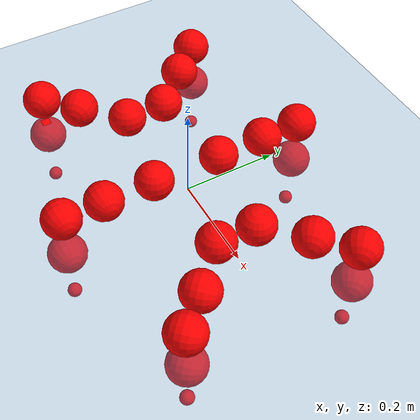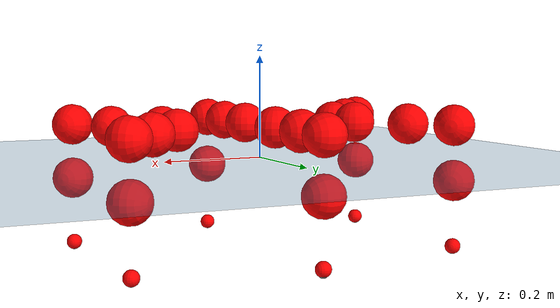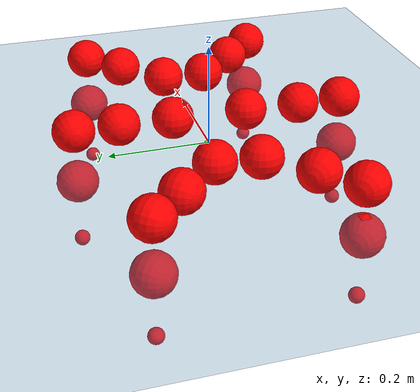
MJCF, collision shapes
<mujoco model="Golem">
  <compiler angle="radian" assetdir="assets" balanceinertia="true" inertiafromgeom="false"/>

  <option timestep="0.005" density="1.2" viscosity="2e-05"/>

  <size nkey="1"/>

  <visual>
    <quality shadowsize="8192"/>
    <map shadowclip="0.5"/>
  </visual>

  <default>
    <default class="/">
      <joint armature="0.01" damping="0.01" frictionloss="0.01"/>
      <geom contype="0" conaffinity="0" group="1" solref="-1000 -80"/>
      <site size="0.01 0.005 0.005" group="5"/>
      <general forcelimited="true" biastype="affine" gainprm="25" biasprm="0 -25 -0.5"/>
      <default class="visual">
        <geom type="mesh" group="2"/>
      </default>
      <default class="collision">
        <geom group="3"/>
      </default>
      <default class="foot">
        <geom size="0.01 0 0" condim="6" group="4" priority="1" solimp="0.015 1 0.01"/>
      </default>
      <default class="reward_collision_sphere">
        <geom group="5" rgba="1 0 0 1"/>
      </default>
    </default>
  </default>

  <asset>
    <texture type="skybox" colorspace="auto" name="//unnamed_texture_0" builtin="gradient" rgb1="0.95 0.95 0.95" rgb2="0.95 0.95 0.95" width="100" height="600"/>
    <texture type="2d" colorspace="auto" name="texplane" builtin="checker" rgb1="0.345 0.575 0.748" rgb2="0.345 0.575 0.748" markrgb="1 1 1" width="512" height="512"/>
    <material name="MatPlane" class="/" texture="texplane" texuniform="true" texrepeat="2 2" specular="0.9"/>
    <mesh name="body" class="/" file="body.stl" scale="0.001 0.001 0.001"/>
    <mesh name="coxa" class="/" file="coxa.stl" scale="0.001 0.001 0.001"/>
    <mesh name="femur" class="/" file="femur.stl" scale="0.001 0.001 0.001"/>
    <mesh name="tibia" class="/" file="tibia.stl" scale="0.001 0.001 0.001"/>
    <mesh name="tarsus" class="/" file="tarsus.stl" scale="0.001 0.001 0.001"/>
  </asset>

  <worldbody>
    <geom name="floor" class="/" size="100 100 0.125" type="plane" group="0" material="MatPlane"/>
    <light name="toplight_shadow" class="/" pos="0 0 5" dir="0.0990148 0.0990148 -0.990148" type="directional" ambient="0.04 0.04 0.04" diffuse="0.55 0.55 0.55" specular="0.12 0.12 0.12"/>
    <light name="toplight_fill" class="/" pos="0 0 5" dir="0.0990148 0.0990148 -0.990148" type="directional" castshadow="false" ambient="0.04 0.04 0.04" diffuse="0.3 0.3 0.3" specular="0.08 0.08 0.08"/>
    <body name="trunk" pos="-0.000127381 4.36604e-05 0.000700609" quat="1 2.18219e-05 -2.1856e-06 -4.41522e-05">
      <inertial pos="-3.51607e-05 0.000733214 -0.00478093" quat="0.99996 0.0056508 0.00525336 -0.00450675" mass="3.86408" diaginertia="0.0263555 0.00374107 0.0102675"/>
      <joint name="//unnamed_joint_0" type="free"/>
      <geom name="//unnamed_geom_1" class="/" pos="0 0 0.0642758" quat="1 0 0 0" type="mesh" rgba="0.9 0.9 0.9 1" mesh="body"/>
      <site name="imu" class="/" pos="0.1529 0.00486125 0.104579" size="0.0101202"/>
      <camera name="track" class="/" pos="0 -1.6437 0" quat="0.707107 0.707107 0 0" mode="trackcom"/>
      <camera name="ego_camera" class="/" pos="0.157287 0 0.100431" quat="-0.5 -0.5 0.5 0.5"/>
      <body name="coxa_RR" pos="-0.214783 -0.0674332 0.0631942" quat="0.382667 1.68939e-05 -3.69011e-06 -0.923886">
        <inertial pos="0.00065479 6.11017e-05 0.00117659" quat="1 -0.000355009 0.000450546 0.000300011" mass="0.205627" diaginertia="0.0261601 0.00372186 0.0101252"/>
        <joint name="coxa_joint_RR" class="/" pos="0 0 0" axis="-0.00446203 -9.59489e-05 -0.99999" range="-3.12026 3.17373" armature="0.0105211" damping="0.00905526" frictionloss="0.010363"/>
        <geom name="//unnamed_geom_2" class="/" type="mesh" rgba="0.2 0.2 0.2 1" mesh="coxa"/>
        <geom name="//unnamed_geom_3" class="reward_collision_sphere" size="0.0404808" pos="-0.0362969 0 0"/>
        <body name="femur_RR" pos="0.0715133 0.0023301 0.00122247" quat="0.499944 -0.500089 0.500051 0.499917">
          <inertial pos="0.00106499 0.00164156 0.00214028" quat="0.999999 -0.000476409 -9.834e-05 0.000993632" mass="0.20741" diaginertia="0.0260714 0.00370187 0.0104296"/>
          <joint name="femur_joint_RR" class="/" pos="0 0 0" axis="-0.00226388 0.00288182 -0.999993" range="-3.14069 3.1408" armature="0.00964313" damping="0.00395886" frictionloss="0.0112256"/>
          <geom name="//unnamed_geom_4" class="/" type="mesh" rgba="0.9 0.9 0.9 1" mesh="femur"/>
          <geom name="//unnamed_geom_5" class="reward_collision_sphere" size="0.0404808"/>
          <body name="tibia_RR" pos="0.000112709 -0.0872759 -0.00195763" quat="-0.000300523 1 -3.0342e-05 0.000129934">
            <inertial pos="-0.000524321 -0.0020239 0.000360879" quat="0.999996 0.00265465 0.000342632 -0.000334001" mass="0.205445" diaginertia="0.026128 0.00374584 0.0102373"/>
            <joint name="tibia_joint_RR" class="/" pos="0 0 0" axis="-0.000247457 0.000335312 1" range="-3.13934 3.14093" armature="0.0104169" damping="0.0131616" frictionloss="0.0102069"/>
            <geom name="//unnamed_geom_6" class="/" type="mesh" rgba="0.2 0.2 0.2 1" mesh="tibia"/>
            <geom name="//unnamed_geom_7" class="reward_collision_sphere" size="0.0404808"/>
            <body name="tarsus_RR" pos="0.104301 0.000617352 -7.53821e-05" quat="1 0.000206201 0.000119197 -0.000191996">
              <inertial pos="0.0733994 0.000864997 -0.000361656" quat="0.501835 0.4982 0.500433 0.499525" mass="0.209616" diaginertia="0.0265829 0.00380007 0.0102715"/>
              <joint name="tarsus_joint_RR" class="/" pos="0 0 0" axis="-0.00277121 0.00279137 0.999992" range="-3.18173 3.18291" armature="0.0103426" damping="0" frictionloss="0.0100307"/>
              <geom name="//unnamed_geom_8" class="/" type="mesh" rgba="0.9 0.9 0.9 1" mesh="tarsus"/>
              <geom name="foot_1" class="foot" size="0.0101372" pos="0.135509 0 0" quat="0 -0.707107 0 0.707107"/>
              <geom name="//unnamed_geom_10" class="reward_collision_sphere" size="0.0404808"/>
              <geom name="//unnamed_geom_11" class="reward_collision_sphere" size="0.0151803" pos="0.130064 0 0"/>
              <site name="foot_1" class="foot" pos="0.135509 0 0" quat="0 -0.707107 0 0.707107" size="0.0101202"/>
            </body>
          </body>
        </body>
      </body>
      <body name="coxa_RM" pos="-0.00193292 -0.110282 0.0632945" quat="0.70703 0.000244211 -0.000382539 -0.707184">
        <inertial pos="0.000641195 0.00049832 0.000581362" quat="0.999949 0.00215156 0.00592626 -0.00787542" mass="0.210557" diaginertia="0.0260165 0.00375036 0.0103741"/>
        <joint name="coxa_joint_RM" class="/" pos="0 0 0" axis="-7.62661e-05 -0.00479855 -0.999988" range="-3.13464 3.14073" armature="0.0101292" damping="0.0107805" frictionloss="0.00990009"/>
        <geom name="//unnamed_geom_12" class="/" type="mesh" rgba="0.2 0.2 0.2 1" mesh="coxa"/>
        <geom name="//unnamed_geom_13" class="reward_collision_sphere" size="0.0404808" pos="-0.0362969 0 0"/>
        <body name="femur_RM" pos="0.0720335 -0.000447696 -0.00142525" quat="0.500055 -0.500078 0.499368 0.500499">
          <inertial pos="-0.00186591 0.000385109 -0.00218537" quat="0.999997 0.00188656 0.00166443 -0.000535521" mass="0.210251" diaginertia="0.0257632 0.00374103 0.0100982"/>
          <joint name="femur_joint_RM" class="/" pos="0 0 0" axis="-0.00248125 0.000126201 -0.999997" range="-3.15201 3.17346" armature="0.00954301" damping="0.00660123" frictionloss="0.00936698"/>
          <geom name="//unnamed_geom_14" class="/" type="mesh" rgba="0.9 0.9 0.9 1" mesh="femur"/>
          <geom name="//unnamed_geom_15" class="reward_collision_sphere" size="0.0404808"/>
          <body name="tibia_RM" pos="-0.000312819 -0.0888441 0.00182384" quat="-0.000111373 1 -2.73092e-05 -0.000359613">
            <inertial pos="0.000533572 -0.000847724 -0.000482674" quat="1 -3.30224e-05 -0.000148883 6.09802e-05" mass="0.20593" diaginertia="0.0256517 0.00368155 0.0101427"/>
            <joint name="tibia_joint_RM" class="/" pos="0 0 0" axis="0.00257007 0.00753747 0.999968" range="-3.15991 3.11253" armature="0.0100629" damping="0" frictionloss="0.00965609"/>
            <geom name="//unnamed_geom_16" class="/" type="mesh" rgba="0.2 0.2 0.2 1" mesh="tibia"/>
            <geom name="//unnamed_geom_17" class="reward_collision_sphere" size="0.0404808"/>
            <body name="tarsus_RM" pos="0.104573 0.00149889 -0.00135127" quat="1 7.80437e-05 9.16831e-06 9.5827e-05">
              <inertial pos="0.0735363 -2.64005e-05 0.000385507" quat="0.502133 0.499962 0.49995 0.497946" mass="0.204427" diaginertia="0.0255463 0.00369918 0.00982922"/>
              <joint name="tarsus_joint_RM" class="/" pos="0 0 0" axis="0.00206135 0.00344654 0.999992" range="-3.16691 3.09966" armature="0.0101234" damping="0.00160701" frictionloss="0.0104285"/>
              <geom name="//unnamed_geom_18" class="/" type="mesh" rgba="0.9 0.9 0.9 1" mesh="tarsus"/>
              <geom name="foot_2" class="foot" size="0.0098065" pos="0.135509 0 0" quat="0 -0.707107 0 0.707107"/>
              <geom name="//unnamed_geom_20" class="reward_collision_sphere" size="0.0404808"/>
              <geom name="//unnamed_geom_21" class="reward_collision_sphere" size="0.0151803" pos="0.130064 0 0"/>
              <site name="foot_2" class="foot" pos="0.135509 0 0" quat="0 -0.707107 0 0.707107" size="0.0101202"/>
            </body>
          </body>
        </body>
      </body>
      <body name="coxa_RF" pos="0.213814 -0.0689586 0.0630203" quat="0.923856 0.000388387 4.54023e-05 -0.38274">
        <inertial pos="-0.000917526 -0.00233634 0.000144438" quat="0.999991 -0.00298757 -0.00173886 -0.00235677" mass="0.208028" diaginertia="0.0260906 0.00372131 0.0101285"/>
        <joint name="coxa_joint_RF" class="/" pos="0 0 0" axis="-0.000638857 0.000467914 -1" range="-3.13729 3.14241" armature="0.00984217" damping="0" frictionloss="0.0102209"/>
        <geom name="//unnamed_geom_22" class="/" type="mesh" rgba="0.2 0.2 0.2 1" mesh="coxa"/>
        <geom name="//unnamed_geom_23" class="reward_collision_sphere" size="0.0404808" pos="-0.0362969 0 0"/>
        <body name="femur_RF" pos="0.0733004 0.000501688 -0.00171218" quat="0.499868 -0.500092 0.500088 0.499951">
          <inertial pos="0.000472345 -6.88029e-05 0.000963238" quat="0.999993 0.00123273 -0.00258728 -0.0024518" mass="0.204427" diaginertia="0.0260191 0.00362144 0.0101276"/>
          <joint name="femur_joint_RF" class="/" pos="0 0 0" axis="0.0012875 -0.00125858 -0.999998" range="-3.10486 3.13062" armature="0.0102368" damping="0.00562012" frictionloss="0.0098723"/>
          <geom name="//unnamed_geom_24" class="/" type="mesh" rgba="0.9 0.9 0.9 1" mesh="femur"/>
          <geom name="//unnamed_geom_25" class="reward_collision_sphere" size="0.0404808"/>
          <body name="tibia_RF" pos="-0.0014939 -0.0886382 -0.00126957" quat="2.24422e-06 1 5.03515e-05 -3.80312e-05">
            <inertial pos="0.000381032 0.000897023 3.54368e-05" quat="0.999949 -0.00629226 -0.00466006 -0.00640067" mass="0.213394" diaginertia="0.025759 0.00377281 0.0102824"/>
            <joint name="tibia_joint_RF" class="/" pos="0 0 0" axis="0.000300384 -0.000925081 1" range="-3.13816 3.14055" armature="0.00998788" damping="0.00138257" frictionloss="0.00986144"/>
            <geom name="//unnamed_geom_26" class="/" type="mesh" rgba="0.2 0.2 0.2 1" mesh="tibia"/>
            <geom name="//unnamed_geom_27" class="reward_collision_sphere" size="0.0404808"/>
            <body name="tarsus_RF" pos="0.107354 -0.00020375 -0.00190539" quat="1 0.000162684 0.00015419 -9.18444e-05">
              <inertial pos="0.0716286 -0.00142823 -0.00103806" quat="0.499556 0.500506 0.496674 0.503243" mass="0.201889" diaginertia="0.0259399 0.00369845 0.0101095"/>
              <joint name="tarsus_joint_RF" class="/" pos="0 0 0" axis="0.00344474 0.00559695 0.999978" range="-3.15281 3.13743" armature="0.0101348" damping="0.0144461" frictionloss="0.0105508"/>
              <geom name="//unnamed_geom_28" class="/" type="mesh" rgba="0.9 0.9 0.9 1" mesh="tarsus"/>
              <geom name="foot_3" class="foot" size="0.010186" pos="0.135509 0 0" quat="0 -0.707107 0 0.707107"/>
              <geom name="//unnamed_geom_30" class="reward_collision_sphere" size="0.0404808"/>
              <geom name="//unnamed_geom_31" class="reward_collision_sphere" size="0.0151803" pos="0.130064 0 0"/>
              <site name="foot_3" class="foot" pos="0.135509 0 0" quat="0 -0.707107 0 0.707107" size="0.0101202"/>
            </body>
          </body>
        </body>
      </body>
      <body name="coxa_LR" pos="-0.214906 0.0706677 0.0666395" quat="0.382872 0.000562132 -2.97073e-05 0.923801">
        <inertial pos="0.00014447 -8.26892e-06 0.00204374" quat="0.999996 0.00246522 0.000156136 -0.00111757" mass="0.206662" diaginertia="0.0256742 0.00368142 0.00985553"/>
        <joint name="coxa_joint_LR" class="/" pos="0 0 0" axis="-0.000950974 7.12009e-06 -1" range="-3.12213 3.12137" armature="0.010587" damping="0" frictionloss="0.00918255"/>
        <geom name="//unnamed_geom_32" class="/" type="mesh" rgba="0.2 0.2 0.2 1" mesh="coxa"/>
        <geom name="//unnamed_geom_33" class="reward_collision_sphere" size="0.0404808" pos="-0.0362969 0 0"/>
        <body name="femur_LR" pos="0.0738177 -0.00235688 -0.000859442" quat="0.499851 -0.499707 0.500105 0.500337">
          <inertial pos="0.00129711 0.000724396 0.000268012" quat="0.999987 -0.00141611 -0.000820853 -0.00473748" mass="0.20226" diaginertia="0.0258943 0.00377416 0.0101955"/>
          <joint name="femur_joint_LR" class="/" pos="0 0 0" axis="-0.00378643 0.00547854 0.999978" range="-3.18297 3.10537" armature="0.00921378" damping="0.0045956" frictionloss="0.00995847"/>
          <geom name="//unnamed_geom_34" class="/" type="mesh" rgba="0.9 0.9 0.9 1" mesh="femur"/>
          <geom name="//unnamed_geom_35" class="reward_collision_sphere" size="0.0404808"/>
          <body name="tibia_LR" pos="0.000427516 -0.0909049 -0.00127737" quat="0.000126552 1 0.000303648 0.000117043">
            <inertial pos="-0.000937374 -0.0012462 -0.000390252" quat="0.999999 0.00104888 -6.77409e-05 0.00021341" mass="0.209728" diaginertia="0.0258129 0.00381036 0.0102554"/>
            <joint name="tibia_joint_LR" class="/" pos="0 0 0" axis="-0.000316854 -0.00965105 -0.999953" range="-3.13278 3.11572" armature="0.0106269" damping="0" frictionloss="0.00999739"/>
            <geom name="//unnamed_geom_36" class="/" type="mesh" rgba="0.2 0.2 0.2 1" mesh="tibia"/>
            <geom name="//unnamed_geom_37" class="reward_collision_sphere" size="0.0404808"/>
            <body name="tarsus_LR" pos="0.108187 0.0012366 0.000355423" quat="1 -0.000314647 4.31369e-05 0.000851071">
              <inertial pos="0.0719723 -0.000487299 0.00119109" quat="0.500093 0.499732 0.500233 0.499942" mass="0.206795" diaginertia="0.0257778 0.00365075 0.0100846"/>
              <joint name="tarsus_joint_LR" class="/" pos="0 0 0" axis="-0.00342671 0.000936287 -0.999994" range="-3.13901 3.14643" armature="0.00962475" damping="0.0281541" frictionloss="0.0108662"/>
              <geom name="//unnamed_geom_38" class="/" type="mesh" rgba="0.9 0.9 0.9 1" mesh="tarsus"/>
              <geom name="foot_4" class="foot" size="0.0102199" pos="0.135509 0 0" quat="0.707107 0 -0.707107 0"/>
              <geom name="//unnamed_geom_40" class="reward_collision_sphere" size="0.0404808"/>
              <geom name="//unnamed_geom_41" class="reward_collision_sphere" size="0.0151803" pos="0.130064 0 0"/>
              <site name="foot_4" class="foot" pos="0.135509 0 0" quat="0.707107 0 -0.707107 0" size="0.0101202"/>
            </body>
          </body>
        </body>
      </body>
      <body name="coxa_LM" pos="0.000404762 0.107637 0.0639918" quat="0.707072 4.93251e-05 -7.03173e-06 0.707141">
        <inertial pos="0.00174127 -4.50855e-05 -0.000348961" quat="0.999987 0.000788595 -0.00403457 0.00286353" mass="0.203715" diaginertia="0.0262138 0.00368581 0.0101281"/>
        <joint name="coxa_joint_LM" class="/" pos="0 0 0" axis="0.00100843 -0.00681879 -0.999976" range="-3.12884 3.1428" armature="0.00997872" damping="0" frictionloss="0.0102686"/>
        <geom name="//unnamed_geom_42" class="/" type="mesh" rgba="0.2 0.2 0.2 1" mesh="coxa"/>
        <geom name="//unnamed_geom_43" class="reward_collision_sphere" size="0.0404808" pos="-0.0362969 0 0"/>
        <body name="femur_LM" pos="0.0683649 0.00094336 0.000945633" quat="0.499968 -0.499982 0.500214 0.499836">
          <inertial pos="-0.000266522 0.000271152 0.000580047" quat="0.999989 -0.00146264 0.00308252 0.00317849" mass="0.210358" diaginertia="0.0252457 0.00373331 0.0104029"/>
          <joint name="femur_joint_LM" class="/" pos="0 0 0" axis="-0.0133282 0.000926911 0.999911" range="-3.10476 3.15667" armature="0.0105493" damping="0" frictionloss="0.0101516"/>
          <geom name="//unnamed_geom_44" class="/" type="mesh" rgba="0.9 0.9 0.9 1" mesh="femur"/>
          <geom name="//unnamed_geom_45" class="reward_collision_sphere" size="0.0404808"/>
          <body name="tibia_LM" pos="0.00049878 -0.086205 0.00135771" quat="-0.000212399 1 2.85703e-05 8.325e-05">
            <inertial pos="-0.00177419 -8.26385e-05 -2.63921e-05" quat="0.999989 0.00125259 -0.000312934 -0.00450195" mass="0.207991" diaginertia="0.0259909 0.00377315 0.0102123"/>
            <joint name="tibia_joint_LM" class="/" pos="0 0 0" axis="0.00202939 0.000195546 -0.999998" range="-3.15637 3.15711" armature="0.00998165" damping="0" frictionloss="0.00895507"/>
            <geom name="//unnamed_geom_46" class="/" type="mesh" rgba="0.2 0.2 0.2 1" mesh="tibia"/>
            <geom name="//unnamed_geom_47" class="reward_collision_sphere" size="0.0404808"/>
            <body name="tarsus_LM" pos="0.108288 -0.000791175 0.000536698" quat="1 0.000128064 0.00023071 -0.000470399">
              <inertial pos="0.0716995 -0.00016505 0.000201855" quat="0.499028 0.502538 0.502781 0.495619" mass="0.205562" diaginertia="0.025832 0.00374871 0.0102019"/>
              <joint name="tarsus_joint_LM" class="/" pos="0 0 0" axis="0.00433238 0.0035247 -0.999984" stiffness="0.0021729" range="-3.12784 3.13903" armature="0.00965893" damping="0.00401187" frictionloss="0.0103962"/>
              <geom name="//unnamed_geom_48" class="/" type="mesh" rgba="0.9 0.9 0.9 1" mesh="tarsus"/>
              <geom name="foot_5" class="foot" size="0.0111009" pos="0.135509 0 0" quat="0.707107 0 -0.707107 0"/>
              <geom name="//unnamed_geom_50" class="reward_collision_sphere" size="0.0404808"/>
              <geom name="//unnamed_geom_51" class="reward_collision_sphere" size="0.0151803" pos="0.130064 0 0"/>
              <site name="foot_5" class="foot" pos="0.135509 0 0" quat="0.707107 0 -0.707107 0" size="0.0101202"/>
            </body>
          </body>
        </body>
      </body>
      <body name="coxa_LF" pos="0.21502 0.0687779 0.0629942" quat="0.923866 -0.000337139 1.57666e-05 0.382717">
        <inertial pos="0.000172666 -0.00199129 0.000483936" quat="0.999973 0.00443624 0.00344292 0.00472258" mass="0.210928" diaginertia="0.0266485 0.00386996 0.0105142"/>
        <joint name="coxa_joint_LF" class="/" pos="0 0 0" axis="0.00445376 -0.00373422 -0.999983" range="-3.12989 3.1406" armature="0.00976699" damping="0.00197808" frictionloss="0.00958715"/>
        <geom name="//unnamed_geom_52" class="/" type="mesh" rgba="0.2 0.2 0.2 1" mesh="coxa"/>
        <geom name="//unnamed_geom_53" class="reward_collision_sphere" size="0.0404808" pos="-0.0362969 0 0"/>
        <body name="femur_LF" pos="0.0700299 0.000444154 0.00081894" quat="0.50003 -0.499972 0.500001 0.499997">
          <inertial pos="-0.000442846 -0.000227275 -0.00140148" quat="0.999996 -0.000611654 -0.00252763 0.000607634" mass="0.20634" diaginertia="0.0254759 0.00372037 0.0100872"/>
          <joint name="femur_joint_LF" class="/" pos="0 0 0" axis="0.000906342 -0.00208077 0.999997" range="-3.1336 3.13913" armature="0.0101648" damping="0.0011655" frictionloss="0.0100334"/>
          <geom name="//unnamed_geom_54" class="/" type="mesh" rgba="0.9 0.9 0.9 1" mesh="femur"/>
          <geom name="//unnamed_geom_55" class="reward_collision_sphere" size="0.0404808"/>
          <body name="tibia_LF" pos="7.97486e-05 -0.0888509 -7.66766e-05" quat="9.49087e-05 1 0.000152696 -2.73091e-05">
            <inertial pos="0.00176971 0.00196766 0.00219717" quat="0.999988 -0.00256653 -0.00280559 -0.00301962" mass="0.207148" diaginertia="0.0260291 0.00373754 0.01048"/>
            <joint name="tibia_joint_LF" class="/" pos="0 0 0" axis="-0.0077634 0.000398792 -0.99997" range="-3.1367 3.10341" armature="0.0102361" damping="0" frictionloss="0.0101748"/>
            <geom name="//unnamed_geom_56" class="/" type="mesh" rgba="0.2 0.2 0.2 1" mesh="tibia"/>
            <geom name="//unnamed_geom_57" class="reward_collision_sphere" size="0.0404808"/>
            <body name="tarsus_LF" pos="0.107618 0.000387504 -0.000811114" quat="1 8.37771e-05 -2.72875e-05 7.81123e-06">
              <inertial pos="0.0731196 0.000683273 0.00171671" quat="0.503913 0.499049 0.496802 0.50021" mass="0.206591" diaginertia="0.0263781 0.00375418 0.0104867"/>
              <joint name="tarsus_joint_LF" class="/" pos="0 0 0" axis="0.00133799 -8.56357e-05 -0.999999" range="-3.16259 3.10022" armature="0.00982279" damping="0.0138031" frictionloss="0.00986216"/>
              <geom name="//unnamed_geom_58" class="/" type="mesh" rgba="0.9 0.9 0.9 1" mesh="tarsus"/>
              <geom name="foot_6" class="foot" size="0.0100851" pos="0.135509 0 0" quat="0.707107 0 -0.707107 0"/>
              <geom name="//unnamed_geom_60" class="reward_collision_sphere" size="0.0404808"/>
              <geom name="//unnamed_geom_61" class="reward_collision_sphere" size="0.0151803" pos="0.130064 0 0"/>
              <site name="foot_6" class="foot" pos="0.135509 0 0" quat="0.707107 0 -0.707107 0" size="0.0101202"/>
            </body>
          </body>
        </body>
      </body>
    </body>
  </worldbody>

  <contact>
    <pair class="/" geom1="floor" geom2="foot_1" name="//unnamed_contact_0"/>
    <pair class="/" geom1="floor" geom2="foot_2" name="//unnamed_contact_1"/>
    <pair class="/" geom1="floor" geom2="foot_3" name="//unnamed_contact_2"/>
    <pair class="/" geom1="floor" geom2="foot_4" name="//unnamed_contact_3"/>
    <pair class="/" geom1="floor" geom2="foot_5" name="//unnamed_contact_4"/>
    <pair class="/" geom1="floor" geom2="foot_6" name="//unnamed_contact_5"/>
  </contact>

  <actuator>
    <general name="coxa_joint_RR" class="/" joint="coxa_joint_RR" forcerange="-7.50654 7.50654" gainprm="25.265" biasprm="0 -25.265 -0.518522"/>
    <general name="femur_joint_RR" class="/" joint="femur_joint_RR" forcerange="-7.3008 7.3008" gainprm="25.265" biasprm="0 -25.265 -0.518522"/>
    <general name="tibia_joint_RR" class="/" joint="tibia_joint_RR" forcerange="-7.42255 7.42255" gainprm="25.265" biasprm="0 -25.265 -0.518522"/>
    <general name="tarsus_joint_RR" class="/" joint="tarsus_joint_RR" forcerange="-7.53587 7.53587" gainprm="25.265" biasprm="0 -25.265 -0.518522"/>
    <general name="coxa_joint_RM" class="/" joint="coxa_joint_RM" forcerange="-7.24672 7.24672" gainprm="25.265" biasprm="0 -25.265 -0.518522"/>
    <general name="femur_joint_RM" class="/" joint="femur_joint_RM" forcerange="-7.30029 7.30029" gainprm="25.265" biasprm="0 -25.265 -0.518522"/>
    <general name="tibia_joint_RM" class="/" joint="tibia_joint_RM" forcerange="-7.41616 7.41616" gainprm="25.265" biasprm="0 -25.265 -0.518522"/>
    <general name="tarsus_joint_RM" class="/" joint="tarsus_joint_RM" forcerange="-7.22443 7.22443" gainprm="25.265" biasprm="0 -25.265 -0.518522"/>
    <general name="coxa_joint_RF" class="/" joint="coxa_joint_RF" forcerange="-7.26007 7.26007" gainprm="25.265" biasprm="0 -25.265 -0.518522"/>
    <general name="femur_joint_RF" class="/" joint="femur_joint_RF" forcerange="-7.3995 7.3995" gainprm="25.265" biasprm="0 -25.265 -0.518522"/>
    <general name="tibia_joint_RF" class="/" joint="tibia_joint_RF" forcerange="-7.38144 7.38144" gainprm="25.265" biasprm="0 -25.265 -0.518522"/>
    <general name="tarsus_joint_RF" class="/" joint="tarsus_joint_RF" forcerange="-7.54903 7.54903" gainprm="25.265" biasprm="0 -25.265 -0.518522"/>
    <general name="coxa_joint_LR" class="/" joint="coxa_joint_LR" forcerange="-7.66041 7.66041" gainprm="25.265" biasprm="0 -25.265 -0.518522"/>
    <general name="femur_joint_LR" class="/" joint="femur_joint_LR" forcerange="-7.05107 7.05107" gainprm="25.265" biasprm="0 -25.265 -0.518522"/>
    <general name="tibia_joint_LR" class="/" joint="tibia_joint_LR" forcerange="-7.44213 7.44213" gainprm="25.265" biasprm="0 -25.265 -0.518522"/>
    <general name="tarsus_joint_LR" class="/" joint="tarsus_joint_LR" forcerange="-7.41641 7.41641" gainprm="25.265" biasprm="0 -25.265 -0.518522"/>
    <general name="coxa_joint_LM" class="/" joint="coxa_joint_LM" forcerange="-7.47582 7.47582" gainprm="25.265" biasprm="0 -25.265 -0.518522"/>
    <general name="femur_joint_LM" class="/" joint="femur_joint_LM" forcerange="-7.61749 7.61749" gainprm="25.265" biasprm="0 -25.265 -0.518522"/>
    <general name="tibia_joint_LM" class="/" joint="tibia_joint_LM" forcerange="-7.38175 7.38175" gainprm="25.265" biasprm="0 -25.265 -0.518522"/>
    <general name="tarsus_joint_LM" class="/" joint="tarsus_joint_LM" forcerange="-7.27177 7.27177" gainprm="25.265" biasprm="0 -25.265 -0.518522"/>
    <general name="coxa_joint_LF" class="/" joint="coxa_joint_LF" forcerange="-7.63785 7.63785" gainprm="25.265" biasprm="0 -25.265 -0.518522"/>
    <general name="femur_joint_LF" class="/" joint="femur_joint_LF" forcerange="-7.50122 7.50122" gainprm="25.265" biasprm="0 -25.265 -0.518522"/>
    <general name="tibia_joint_LF" class="/" joint="tibia_joint_LF" forcerange="-7.40452 7.40452" gainprm="25.265" biasprm="0 -25.265 -0.518522"/>
    <general name="tarsus_joint_LF" class="/" joint="tarsus_joint_LF" forcerange="-6.75525 6.75525" gainprm="25.265" biasprm="0 -25.265 -0.518522"/>
  </actuator>

  <sensor>
    <gyro site="imu" name="imu_angular_velocity"/>
    <velocimeter site="imu" name="imu_linear_velocity"/>
    <framelinvel objtype="site" objname="foot_1" name="foot_1_global_linear_velocity"/>
    <framelinvel objtype="site" objname="foot_2" name="foot_2_global_linear_velocity"/>
    <framelinvel objtype="site" objname="foot_3" name="foot_3_global_linear_velocity"/>
    <framelinvel objtype="site" objname="foot_4" name="foot_4_global_linear_velocity"/>
    <framelinvel objtype="site" objname="foot_5" name="foot_5_global_linear_velocity"/>
    <framelinvel objtype="site" objname="foot_6" name="foot_6_global_linear_velocity"/>
  </sensor>

  <keyframe>
    <key name="home" qpos="0 0 0.1457 1 0 0 0 0 0 0 0 0 0 0 0 0 0 0 0 0 0 0 0 0 0 0 0 0 0 0 0"/>
  </keyframe>
</mujoco>
